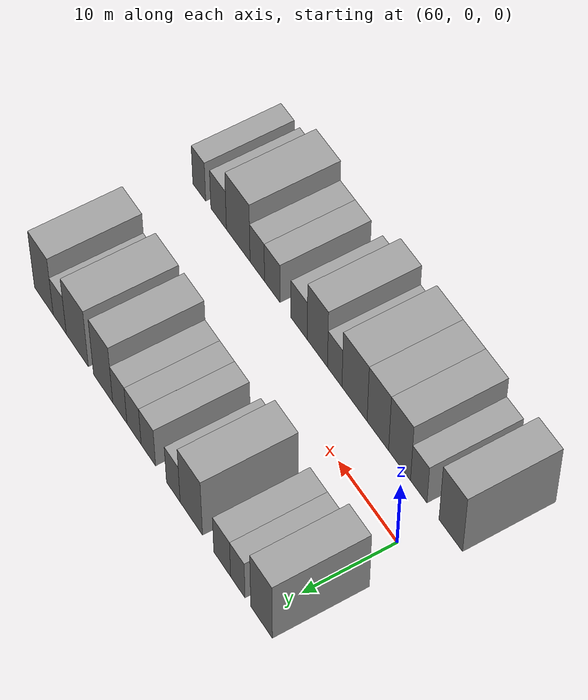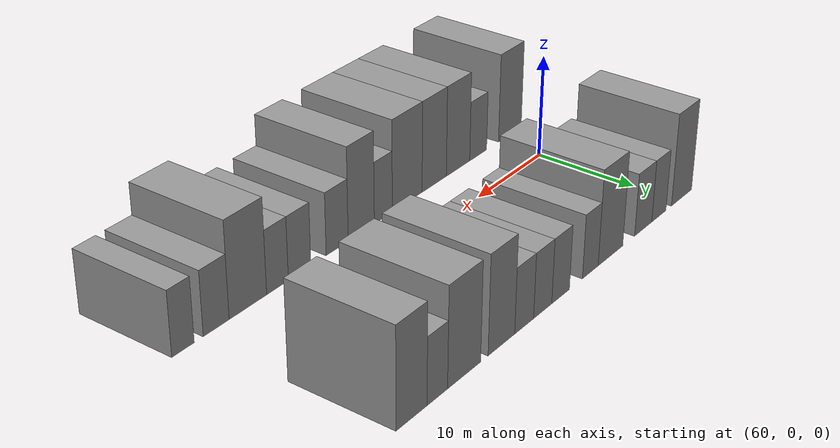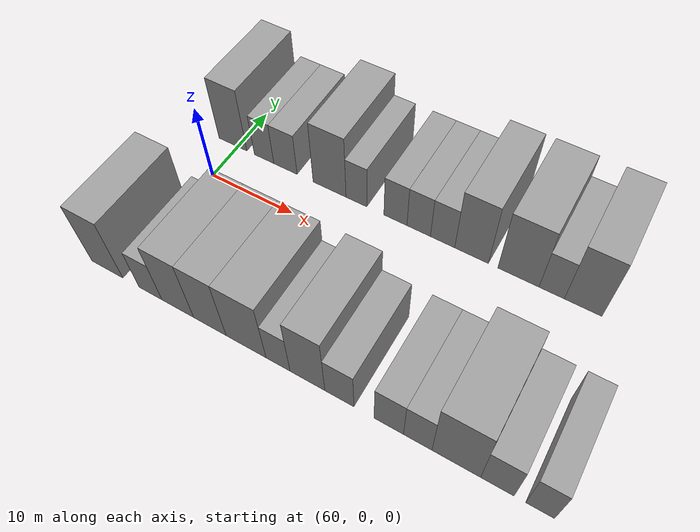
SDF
<sdf version="1.6">
 <world name="default">
  <model name="building_13">
   <static>1</static>
   <pose>59.3472 9.5000 0 0.000000 0.000000 1.570796</pose>
   <link name="link">
    <pose>0 0 4.50 0 0 0</pose>
    <collision name="collision"><geometry><box><size>10.0000 3.6953 9.0000</size></box></geometry></collision>
    <visual name="visual">
     <cast_shadows>0</cast_shadows>
     <geometry><box><size>10.0000 3.6953 9.0000</size></box></geometry>
     <material>
      <script>
       <uri>model://grey_wall/materials/scripts</uri>
       <uri>model://grey_wall/materials/textures</uri>
       <name>vrc/grey_wall</name>
      </script>
     </material>
    </visual>
   </link>
  </model>
  <model name="building_14">
   <static>1</static>
   <pose>63.4480 9.5000 0 0.000000 0.000000 1.570796</pose>
   <link name="link">
    <pose>0 0 3.00 0 0 0</pose>
    <collision name="collision"><geometry><box><size>10.0000 2.5064 6.0000</size></box></geometry></collision>
    <visual name="visual">
     <cast_shadows>0</cast_shadows>
     <geometry><box><size>10.0000 2.5064 6.0000</size></box></geometry>
     <material>
      <script>
       <uri>model://grey_wall/materials/scripts</uri>
       <uri>model://grey_wall/materials/textures</uri>
       <name>vrc/grey_wall</name>
      </script>
     </material>
    </visual>
   </link>
  </model>
  <model name="building_15">
   <static>1</static>
   <pose>66.1786 9.5000 0 0.000000 0.000000 1.570796</pose>
   <link name="link">
    <pose>0 0 3.00 0 0 0</pose>
    <collision name="collision"><geometry><box><size>10.0000 2.9547 6.0000</size></box></geometry></collision>
    <visual name="visual">
     <cast_shadows>0</cast_shadows>
     <geometry><box><size>10.0000 2.9547 6.0000</size></box></geometry>
     <material>
      <script>
       <uri>model://grey_wall/materials/scripts</uri>
       <uri>model://grey_wall/materials/textures</uri>
       <name>vrc/grey_wall</name>
      </script>
     </material>
    </visual>
   </link>
  </model>
  <model name="building_16">
   <static>1</static>
   <pose>71.6611 9.5000 0 0.000000 0.000000 1.570796</pose>
   <link name="link">
    <pose>0 0 4.50 0 0 0</pose>
    <collision name="collision"><geometry><box><size>10.0000 4.0103 9.0000</size></box></geometry></collision>
    <visual name="visual">
     <cast_shadows>0</cast_shadows>
     <geometry><box><size>10.0000 4.0103 9.0000</size></box></geometry>
     <material>
      <script>
       <uri>model://grey_wall/materials/scripts</uri>
       <uri>model://grey_wall/materials/textures</uri>
       <name>vrc/grey_wall</name>
      </script>
     </material>
    </visual>
   </link>
  </model>
  <model name="building_17">
   <static>1</static>
   <pose>74.9075 9.5000 0 0.000000 0.000000 1.570796</pose>
   <link name="link">
    <pose>0 0 3.00 0 0 0</pose>
    <collision name="collision"><geometry><box><size>10.0000 2.4826 6.0000</size></box></geometry></collision>
    <visual name="visual">
     <cast_shadows>0</cast_shadows>
     <geometry><box><size>10.0000 2.4826 6.0000</size></box></geometry>
     <material>
      <script>
       <uri>model://grey_wall/materials/scripts</uri>
       <uri>model://grey_wall/materials/textures</uri>
       <name>vrc/grey_wall</name>
      </script>
     </material>
    </visual>
   </link>
  </model>
  <model name="building_18">
   <static>1</static>
   <pose>79.4755 9.5000 0 0.000000 0.000000 1.570796</pose>
   <link name="link">
    <pose>0 0 3.00 0 0 0</pose>
    <collision name="collision"><geometry><box><size>10.0000 2.6533 6.0000</size></box></geometry></collision>
    <visual name="visual">
     <cast_shadows>0</cast_shadows>
     <geometry><box><size>10.0000 2.6533 6.0000</size></box></geometry>
     <material>
      <script>
       <uri>model://grey_wall/materials/scripts</uri>
       <uri>model://grey_wall/materials/textures</uri>
       <name>vrc/grey_wall</name>
      </script>
     </material>
    </visual>
   </link>
  </model>
  <model name="building_19">
   <static>1</static>
   <pose>82.1273 9.5000 0 0.000000 0.000000 1.570796</pose>
   <link name="link">
    <pose>0 0 3.00 0 0 0</pose>
    <collision name="collision"><geometry><box><size>10.0000 2.6502 6.0000</size></box></geometry></collision>
    <visual name="visual">
     <cast_shadows>0</cast_shadows>
     <geometry><box><size>10.0000 2.6502 6.0000</size></box></geometry>
     <material>
      <script>
       <uri>model://grey_wall/materials/scripts</uri>
       <uri>model://grey_wall/materials/textures</uri>
       <name>vrc/grey_wall</name>
      </script>
     </material>
    </visual>
   </link>
  </model>
  <model name="building_20">
   <static>1</static>
   <pose>84.7963 9.5000 0 0.000000 0.000000 1.570796</pose>
   <link name="link">
    <pose>0 0 3.00 0 0 0</pose>
    <collision name="collision"><geometry><box><size>10.0000 2.6878 6.0000</size></box></geometry></collision>
    <visual name="visual">
     <cast_shadows>0</cast_shadows>
     <geometry><box><size>10.0000 2.6878 6.0000</size></box></geometry>
     <material>
      <script>
       <uri>model://grey_wall/materials/scripts</uri>
       <uri>model://grey_wall/materials/textures</uri>
       <name>vrc/grey_wall</name>
      </script>
     </material>
    </visual>
   </link>
  </model>
  <model name="building_21">
   <static>1</static>
   <pose>87.9609 9.5000 0 0.000000 0.000000 1.570796</pose>
   <link name="link">
    <pose>0 0 4.50 0 0 0</pose>
    <collision name="collision"><geometry><box><size>10.0000 3.6413 9.0000</size></box></geometry></collision>
    <visual name="visual">
     <cast_shadows>0</cast_shadows>
     <geometry><box><size>10.0000 3.6413 9.0000</size></box></geometry>
     <material>
      <script>
       <uri>model://grey_wall/materials/scripts</uri>
       <uri>model://grey_wall/materials/textures</uri>
       <name>vrc/grey_wall</name>
      </script>
     </material>
    </visual>
   </link>
  </model>
  <model name="building_22">
   <static>1</static>
   <pose>92.9177 9.5000 0 0.000000 0.000000 1.570796</pose>
   <link name="link">
    <pose>0 0 4.50 0 0 0</pose>
    <collision name="collision"><geometry><box><size>10.0000 4.2722 9.0000</size></box></geometry></collision>
    <visual name="visual">
     <cast_shadows>0</cast_shadows>
     <geometry><box><size>10.0000 4.2722 9.0000</size></box></geometry>
     <material>
      <script>
       <uri>model://grey_wall/materials/scripts</uri>
       <uri>model://grey_wall/materials/textures</uri>
       <name>vrc/grey_wall</name>
      </script>
     </material>
    </visual>
   </link>
  </model>
  <model name="building_23">
   <static>1</static>
   <pose>96.3327 9.5000 0 0.000000 0.000000 1.570796</pose>
   <link name="link">
    <pose>0 0 3.00 0 0 0</pose>
    <collision name="collision"><geometry><box><size>10.0000 2.5578 6.0000</size></box></geometry></collision>
    <visual name="visual">
     <cast_shadows>0</cast_shadows>
     <geometry><box><size>10.0000 2.5578 6.0000</size></box></geometry>
     <material>
      <script>
       <uri>model://grey_wall/materials/scripts</uri>
       <uri>model://grey_wall/materials/textures</uri>
       <name>vrc/grey_wall</name>
      </script>
     </material>
    </visual>
   </link>
  </model>
  <model name="building_24">
   <static>1</static>
   <pose>99.4689 9.5000 0 0.000000 0.000000 1.570796</pose>
   <link name="link">
    <pose>0 0 4.50 0 0 0</pose>
    <collision name="collision"><geometry><box><size>10.0000 3.7147 9.0000</size></box></geometry></collision>
    <visual name="visual">
     <cast_shadows>0</cast_shadows>
     <geometry><box><size>10.0000 3.7147 9.0000</size></box></geometry>
     <material>
      <script>
       <uri>model://grey_wall/materials/scripts</uri>
       <uri>model://grey_wall/materials/textures</uri>
       <name>vrc/grey_wall</name>
      </script>
     </material>
    </visual>
   </link>
  </model>
  <model name="building_63">
   <static>1</static>
   <pose>58.1718 -9.5000 0 0.000000 0.000000 1.570796</pose>
   <link name="link">
    <pose>0 0 4.50 0 0 0</pose>
    <collision name="collision"><geometry><box><size>10.0000 3.8913 9.0000</size></box></geometry></collision>
    <visual name="visual">
     <cast_shadows>0</cast_shadows>
     <geometry><box><size>10.0000 3.8913 9.0000</size></box></geometry>
     <material>
      <script>
       <uri>model://grey_wall/materials/scripts</uri>
       <uri>model://grey_wall/materials/textures</uri>
       <name>vrc/grey_wall</name>
      </script>
     </material>
    </visual>
   </link>
  </model>
  <model name="building_64">
   <static>1</static>
   <pose>63.4983 -9.5000 0 0.000000 0.000000 1.570796</pose>
   <link name="link">
    <pose>0 0 3.00 0 0 0</pose>
    <collision name="collision"><geometry><box><size>10.0000 2.7617 6.0000</size></box></geometry></collision>
    <visual name="visual">
     <cast_shadows>0</cast_shadows>
     <geometry><box><size>10.0000 2.7617 6.0000</size></box></geometry>
     <material>
      <script>
       <uri>model://grey_wall/materials/scripts</uri>
       <uri>model://grey_wall/materials/textures</uri>
       <name>vrc/grey_wall</name>
      </script>
     </material>
    </visual>
   </link>
  </model>
  <model name="building_65">
   <static>1</static>
   <pose>66.7385 -9.5000 0 0.000000 0.000000 1.570796</pose>
   <link name="link">
    <pose>0 0 4.50 0 0 0</pose>
    <collision name="collision"><geometry><box><size>10.0000 3.7188 9.0000</size></box></geometry></collision>
    <visual name="visual">
     <cast_shadows>0</cast_shadows>
     <geometry><box><size>10.0000 3.7188 9.0000</size></box></geometry>
     <material>
      <script>
       <uri>model://grey_wall/materials/scripts</uri>
       <uri>model://grey_wall/materials/textures</uri>
       <name>vrc/grey_wall</name>
      </script>
     </material>
    </visual>
   </link>
  </model>
  <model name="building_66">
   <static>1</static>
   <pose>70.4529 -9.5000 0 0.000000 0.000000 1.570796</pose>
   <link name="link">
    <pose>0 0 4.50 0 0 0</pose>
    <collision name="collision"><geometry><box><size>10.0000 3.7100 9.0000</size></box></geometry></collision>
    <visual name="visual">
     <cast_shadows>0</cast_shadows>
     <geometry><box><size>10.0000 3.7100 9.0000</size></box></geometry>
     <material>
      <script>
       <uri>model://grey_wall/materials/scripts</uri>
       <uri>model://grey_wall/materials/textures</uri>
       <name>vrc/grey_wall</name>
      </script>
     </material>
    </visual>
   </link>
  </model>
  <model name="building_67">
   <static>1</static>
   <pose>74.5071 -9.5000 0 0.000000 0.000000 1.570796</pose>
   <link name="link">
    <pose>0 0 4.50 0 0 0</pose>
    <collision name="collision"><geometry><box><size>10.0000 4.3983 9.0000</size></box></geometry></collision>
    <visual name="visual">
     <cast_shadows>0</cast_shadows>
     <geometry><box><size>10.0000 4.3983 9.0000</size></box></geometry>
     <material>
      <script>
       <uri>model://grey_wall/materials/scripts</uri>
       <uri>model://grey_wall/materials/textures</uri>
       <name>vrc/grey_wall</name>
      </script>
     </material>
    </visual>
   </link>
  </model>
  <model name="building_68">
   <static>1</static>
   <pose>77.9855 -9.5000 0 0.000000 0.000000 1.570796</pose>
   <link name="link">
    <pose>0 0 3.00 0 0 0</pose>
    <collision name="collision"><geometry><box><size>10.0000 2.5585 6.0000</size></box></geometry></collision>
    <visual name="visual">
     <cast_shadows>0</cast_shadows>
     <geometry><box><size>10.0000 2.5585 6.0000</size></box></geometry>
     <material>
      <script>
       <uri>model://grey_wall/materials/scripts</uri>
       <uri>model://grey_wall/materials/textures</uri>
       <name>vrc/grey_wall</name>
      </script>
     </material>
    </visual>
   </link>
  </model>
  <model name="building_69">
   <static>1</static>
   <pose>81.0735 -9.5000 0 0.000000 0.000000 1.570796</pose>
   <link name="link">
    <pose>0 0 4.50 0 0 0</pose>
    <collision name="collision"><geometry><box><size>10.0000 3.6177 9.0000</size></box></geometry></collision>
    <visual name="visual">
     <cast_shadows>0</cast_shadows>
     <geometry><box><size>10.0000 3.6177 9.0000</size></box></geometry>
     <material>
      <script>
       <uri>model://grey_wall/materials/scripts</uri>
       <uri>model://grey_wall/materials/textures</uri>
       <name>vrc/grey_wall</name>
      </script>
     </material>
    </visual>
   </link>
  </model>
  <model name="building_70">
   <static>1</static>
   <pose>84.3538 -9.5000 0 0.000000 0.000000 1.570796</pose>
   <link name="link">
    <pose>0 0 3.00 0 0 0</pose>
    <collision name="collision"><geometry><box><size>10.0000 2.9428 6.0000</size></box></geometry></collision>
    <visual name="visual">
     <cast_shadows>0</cast_shadows>
     <geometry><box><size>10.0000 2.9428 6.0000</size></box></geometry>
     <material>
      <script>
       <uri>model://grey_wall/materials/scripts</uri>
       <uri>model://grey_wall/materials/textures</uri>
       <name>vrc/grey_wall</name>
      </script>
     </material>
    </visual>
   </link>
  </model>
  <model name="building_71">
   <static>1</static>
   <pose>89.2517 -9.5000 0 0.000000 0.000000 1.570796</pose>
   <link name="link">
    <pose>0 0 3.00 0 0 0</pose>
    <collision name="collision"><geometry><box><size>10.0000 2.8529 6.0000</size></box></geometry></collision>
    <visual name="visual">
     <cast_shadows>0</cast_shadows>
     <geometry><box><size>10.0000 2.8529 6.0000</size></box></geometry>
     <material>
      <script>
       <uri>model://grey_wall/materials/scripts</uri>
       <uri>model://grey_wall/materials/textures</uri>
       <name>vrc/grey_wall</name>
      </script>
     </material>
    </visual>
   </link>
  </model>
  <model name="building_72">
   <static>1</static>
   <pose>92.0206 -9.5000 0 0.000000 0.000000 1.570796</pose>
   <link name="link">
    <pose>0 0 3.00 0 0 0</pose>
    <collision name="collision"><geometry><box><size>10.0000 2.6849 6.0000</size></box></geometry></collision>
    <visual name="visual">
     <cast_shadows>0</cast_shadows>
     <geometry><box><size>10.0000 2.6849 6.0000</size></box></geometry>
     <material>
      <script>
       <uri>model://grey_wall/materials/scripts</uri>
       <uri>model://grey_wall/materials/textures</uri>
       <name>vrc/grey_wall</name>
      </script>
     </material>
    </visual>
   </link>
  </model>
  <model name="building_73">
   <static>1</static>
   <pose>95.5877 -9.5000 0 0.000000 0.000000 1.570796</pose>
   <link name="link">
    <pose>0 0 4.50 0 0 0</pose>
    <collision name="collision"><geometry><box><size>10.0000 4.4493 9.0000</size></box></geometry></collision>
    <visual name="visual">
     <cast_shadows>0</cast_shadows>
     <geometry><box><size>10.0000 4.4493 9.0000</size></box></geometry>
     <material>
      <script>
       <uri>model://grey_wall/materials/scripts</uri>
       <uri>model://grey_wall/materials/textures</uri>
       <name>vrc/grey_wall</name>
      </script>
     </material>
    </visual>
   </link>
  </model>
  <model name="building_74">
   <static>1</static>
   <pose>99.2932 -9.5000 0 0.000000 0.000000 1.570796</pose>
   <link name="link">
    <pose>0 0 3.00 0 0 0</pose>
    <collision name="collision"><geometry><box><size>10.0000 2.9615 6.0000</size></box></geometry></collision>
    <visual name="visual">
     <cast_shadows>0</cast_shadows>
     <geometry><box><size>10.0000 2.9615 6.0000</size></box></geometry>
     <material>
      <script>
       <uri>model://grey_wall/materials/scripts</uri>
       <uri>model://grey_wall/materials/textures</uri>
       <name>vrc/grey_wall</name>
      </script>
     </material>
    </visual>
   </link>
  </model>
  <model name="building_75">
   <static>1</static>
   <pose>103.0085 -9.5000 0 0.000000 0.000000 1.570796</pose>
   <link name="link">
    <pose>0 0 3.00 0 0 0</pose>
    <collision name="collision"><geometry><box><size>10.0000 2.4691 6.0000</size></box></geometry></collision>
    <visual name="visual">
     <cast_shadows>0</cast_shadows>
     <geometry><box><size>10.0000 2.4691 6.0000</size></box></geometry>
     <material>
      <script>
       <uri>model://grey_wall/materials/scripts</uri>
       <uri>model://grey_wall/materials/textures</uri>
       <name>vrc/grey_wall</name>
      </script>
     </material>
    </visual>
   </link>
  </model>
 </world>
</sdf>
